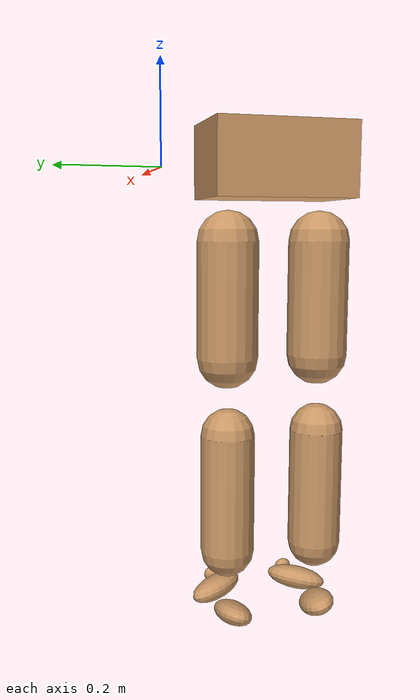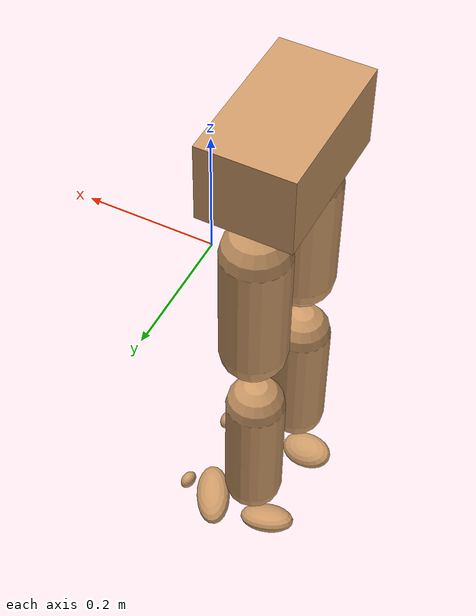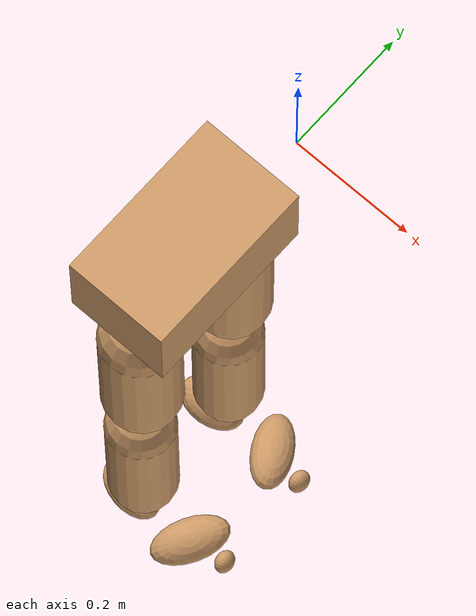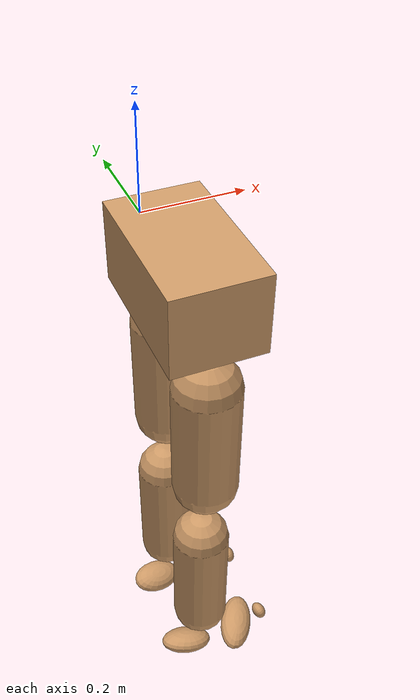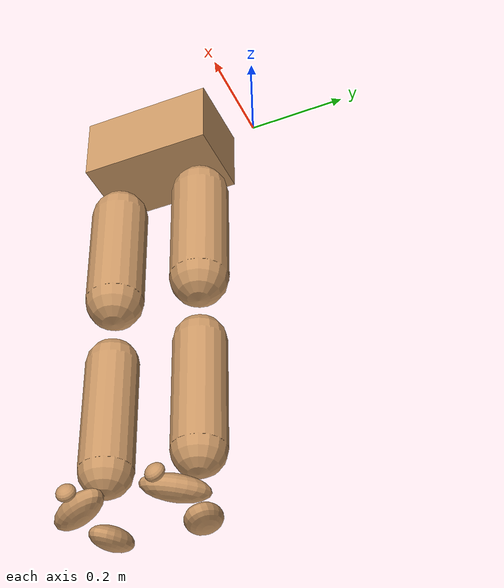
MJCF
<mujoco model="smpl_humanoid_lower_body_ellipsoid_feet">
  <compiler coordinate="local"/>
  <default>
    <joint damping="0.0" armature="0.01" stiffness="0.0" limited="true"/>
    <geom conaffinity="1" condim="3" contype="7" margin="0.001" rgba="0.8 0.6 .4 1"/>
  </default>
  <asset>
    <texture type="skybox" builtin="gradient" rgb1=".4 .5 .6" rgb2="0 0 0" width="100" height="100"/>
    <texture builtin="flat" height="1278" mark="cross" markrgb="1 1 1" name="texgeom" random="0.01" rgb1="0.8 0.6 0.4" rgb2="0.8 0.6 0.4" type="cube" width="127"/>
    <texture builtin="checker" height="100" name="texplane" rgb1="0 0 0" rgb2="0.8 0.8 0.8" type="2d" width="100"/>
    <material name="MatPlane" reflectance="0.5" shininess="1" specular="1" texrepeat="60 60" texture="texplane"/>
    <material name="geom" texture="texgeom" texuniform="true"/>
  </asset>
  <worldbody>
    <light cutoff="100" diffuse="1 1 1" dir="-0 0 -1.3" directional="true" exponent="1" pos="0 0 1.3" specular=".1 .1 .1"/>
    <body name="Pelvis" pos="-0.0018 -0.2233 0.0282">
      <freejoint name="Pelvis"/>
      <geom type="box" pos="-0.0055 -0.0000 -0.0121" size="0.083 0.140 0.0722" quat="1.0000 0.0000 0.0000 0.0000" density="1000"/>
      <body name="L_Hip" pos="-0.00655 0.0950 -0.0910">
        <joint name="L_Hip_x" type="hinge" pos="0 0 0" axis="1 0 0" stiffness="250" damping="25" armature="0.02" range="-20.0000 45.0000"/>
        <joint name="L_Hip_y" type="hinge" pos="0 0 0" axis="0 1 0" stiffness="250" damping="25" armature="0.02" range="-30.0000 120.0000"/>
        <joint name="L_Hip_z" type="hinge" pos="0 0 0" axis="0 0 1" stiffness="250" damping="25" armature="0.02" range="-45.0000 45.0000"/>
        <geom type="capsule" contype="1" conaffinity="1" density="2040.816327" fromto="0.00 0.0 -0.0750 0.00 0.0 -0.3030" size="0.0606"/>
        <body name="L_Knee" pos="-0.0067 0.0 -0.3789">
          <joint name="L_Knee_x" type="hinge" pos="0 0 0" axis="1 0 0" stiffness="200" damping="20" armature="0.02" range="-10.0000 10.0000"/>
          <joint name="L_Knee_y" type="hinge" pos="0 0 0" axis="0 1 0" stiffness="200" damping="20" armature="0.02" range="-10.0000 150.0000"/>
          <joint name="L_Knee_z" type="hinge" pos="0 0 0" axis="0 0 1" stiffness="200" damping="20" armature="0.02" range="-15.0000 15.0000"/>
          <geom type="capsule" contype="1" conaffinity="1" density="1234.567901" fromto="0.00 0.0 -0.0797 0.00 0.0 -0.3187" size="0.0541"/>
          <body name="L_Ankle" pos="0.00 0.0 -0.3982">
            <joint name="L_Ankle_x" type="hinge" pos="0 0 0" axis="1 0 0" stiffness="150" damping="15" armature="0.02" range="-10.0000 10.0000"/>
            <joint name="L_Ankle_y" type="hinge" pos="0 0 0" axis="0 1 0" stiffness="150" damping="15" armature="0.02" range="-45.0000 20.0000"/>
            <joint name="L_Ankle_z" type="hinge" pos="0 0 0" axis="0 0 1" stiffness="150" damping="15" armature="0.02" range="-10.0000 10.0000"/>
            <geom type="ellipsoid" pos="-0.0301 -0.0037 -0.0450" size="0.0540 0.0354 0.0226" quat="0.9795 0.1640 0.0996 0.0505" density="1000"/>
            <geom type="ellipsoid" pos="0.0890 -0.0020 -0.0456" size="0.0338 0.0632 0.0240" quat="0.9572 -0.0878 0.1218 0.2470" density="1000"/>
            <body name="L_Toe" pos="0.1400 0.0000 -0.0550">
              <joint name="L_Toe_x" type="hinge" pos="0 0 0" axis="1 0 0" stiffness="75" damping="8" armature="0.02" range="-10.0000 10.0000"/>
              <joint name="L_Toe_y" type="hinge" pos="0 0 0" axis="0 1 0" stiffness="75" damping="8" armature="0.02" range="-20.0000 20.0000"/>
              <joint name="L_Toe_z" type="hinge" pos="0 0 0" axis="0 0 1" stiffness="75" damping="8" armature="0.02" range="-5.0000 5.0000"/>
              <geom type="ellipsoid" pos="0.0102 -0.0108 0.0094" size="0.0182 0.0186 0.0132" quat="0.7600 0.2624 0.5268 0.2759" density="1000"/>
            </body>
          </body>
        </body>
      </body>
      <body name="R_Hip" pos="-0.00655 -0.0950 -0.0910">
        <joint name="R_Hip_x" type="hinge" pos="0 0 0" axis="1 0 0" stiffness="250" damping="25" armature="0.02" range="-20.0000 45.0000"/>
        <joint name="R_Hip_y" type="hinge" pos="0 0 0" axis="0 1 0" stiffness="250" damping="25" armature="0.02" range="-30.0000 120.0000"/>
        <joint name="R_Hip_z" type="hinge" pos="0 0 0" axis="0 0 1" stiffness="250" damping="25" armature="0.02" range="-15.0000 15.0000"/>
        <geom type="capsule" contype="1" conaffinity="1" density="2040.816327" fromto="0.00 0.0 -0.0750 0.00 0.0 -0.3030" size="0.0606"/>
        <body name="R_Knee" pos="-0.0067 0.0 -0.3789">
          <joint name="R_Knee_x" type="hinge" pos="0 0 0" axis="1 0 0" stiffness="200" damping="20" armature="0.02" range="-10.0000 10.0000"/>
          <joint name="R_Knee_y" type="hinge" pos="0 0 0" axis="0 1 0" stiffness="200" damping="20" armature="0.02" range="-10.0000 150.0000"/>
          <joint name="R_Knee_z" type="hinge" pos="0 0 0" axis="0 0 1" stiffness="200" damping="20" armature="0.02" range="-15.0000 15.0000"/>
          <geom type="capsule" contype="1" conaffinity="1" density="1234.567901" fromto="0.00 0.0 -0.0797 0.00 0.0 -0.3187" size="0.0541"/>
          <body name="R_Ankle" pos="0.0 0.0 -0.3982">
            <joint name="R_Ankle_x" type="hinge" pos="0 0 0" axis="1 0 0" stiffness="150" damping="15" armature="0.02" range="-25.0000 25.0000"/>
            <joint name="R_Ankle_y" type="hinge" pos="0 0 0" axis="0 1 0" stiffness="150" damping="15" armature="0.02" range="-45.0000 20.0000"/>
            <joint name="R_Ankle_z" type="hinge" pos="0 0 0" axis="0 0 1" stiffness="150" damping="15" armature="0.02" range="-10.0000 10.0000"/>
            <geom type="ellipsoid" pos="-0.0301 0.0037 -0.0450" size="0.0540 0.0354 0.0226" quat="0.9795 -0.1640 0.0996 -0.0505" density="1000"/>
            <geom type="ellipsoid" pos="0.0890 0.0020 -0.0456" size="0.0338 0.0632 0.0240" quat="0.9572 0.0878 0.1218 -0.2470" density="1000"/>
            <body name="R_Toe" pos="0.1400 0.0000 -0.0550">
              <joint name="R_Toe_x" type="hinge" pos="0 0 0" axis="1 0 0" stiffness="75" damping="8" armature="0.02" range="-10.0000 10.0000"/>
              <joint name="R_Toe_y" type="hinge" pos="0 0 0" axis="0 1 0" stiffness="75" damping="8" armature="0.02" range="-20.0000 20.0000"/>
              <joint name="R_Toe_z" type="hinge" pos="0 0 0" axis="0 0 1" stiffness="75" damping="8" armature="0.02" range="-5.0000 5.0000"/>
              <geom type="ellipsoid" pos="0.0102 0.0108 0.0094" size="0.0182 0.0186 0.0132" quat="0.7600 -0.2624 0.5268 -0.2759" density="1000"/>
            </body>
          </body>
        </body>
      </body>
    </body>
  </worldbody>
  <actuator>
    <motor name="L_Hip_x" joint="L_Hip_x" gear="500"/>
    <motor name="L_Hip_y" joint="L_Hip_y" gear="500"/>
    <motor name="L_Hip_z" joint="L_Hip_z" gear="500"/>
    <motor name="L_Knee_x" joint="L_Knee_x" gear="500"/>
    <motor name="L_Knee_y" joint="L_Knee_y" gear="500"/>
    <motor name="L_Knee_z" joint="L_Knee_z" gear="500"/>
    <motor name="L_Ankle_x" joint="L_Ankle_x" gear="500"/>
    <motor name="L_Ankle_y" joint="L_Ankle_y" gear="500"/>
    <motor name="L_Ankle_z" joint="L_Ankle_z" gear="500"/>
    <motor name="L_Toe_x" joint="L_Toe_x" gear="500"/>
    <motor name="L_Toe_y" joint="L_Toe_y" gear="500"/>
    <motor name="L_Toe_z" joint="L_Toe_z" gear="500"/>
    <motor name="R_Hip_x" joint="R_Hip_x" gear="500"/>
    <motor name="R_Hip_y" joint="R_Hip_y" gear="500"/>
    <motor name="R_Hip_z" joint="R_Hip_z" gear="500"/>
    <motor name="R_Knee_x" joint="R_Knee_x" gear="500"/>
    <motor name="R_Knee_y" joint="R_Knee_y" gear="500"/>
    <motor name="R_Knee_z" joint="R_Knee_z" gear="500"/>
    <motor name="R_Ankle_x" joint="R_Ankle_x" gear="500"/>
    <motor name="R_Ankle_y" joint="R_Ankle_y" gear="500"/>
    <motor name="R_Ankle_z" joint="R_Ankle_z" gear="500"/>
    <motor name="R_Toe_x" joint="R_Toe_x" gear="500"/>
    <motor name="R_Toe_y" joint="R_Toe_y" gear="500"/>
    <motor name="R_Toe_z" joint="R_Toe_z" gear="500"/>
  </actuator>
</mujoco>
